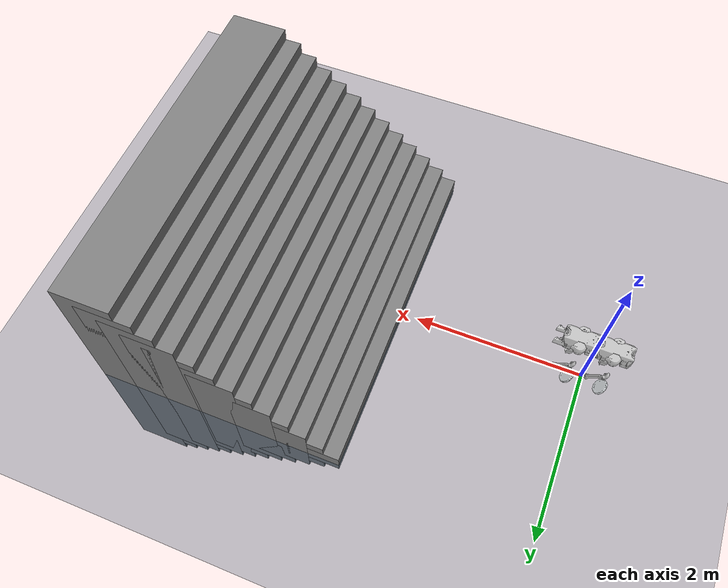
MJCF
<mujoco model="ddt scene">
  <include file="robot.xml"/>

  <statistic center="0 0 0.1" extent="0.8"/>

  <visual>
    <headlight diffuse="0.6 0.6 0.6" ambient="0.3 0.3 0.3" specular="0 0 0"/>
    <rgba haze="0.15 0.25 0.35 1"/>
    <global azimuth="-130" elevation="-20"/>
  </visual>

  <asset>
    <texture type="skybox" builtin="gradient" rgb1="0.3 0.5 0.7" rgb2="0 0 0" width="512" height="3072"/>
    <texture type="2d" name="groundplane" builtin="checker" mark="edge" rgb1="0.2 0.3 0.4" rgb2="0.1 0.2 0.3"
      markrgb="0.8 0.8 0.8" width="300" height="300"/>
    <material name="groundplane" texture="groundplane" texuniform="true" texrepeat="5 5" reflectance="0.2"/>
  </asset>

  <worldbody>
    <light pos="0 0 1.5" dir="0 0 -1" directional="true"/>
    <geom name="floor" size="0 0 0.05" type="plane" material="groundplane"/>

    <geom pos="2.4 0 0.02" type="box"  size="0.2 2 0.15" quat="1.0 0 0 0"/>
    <geom pos="2.6 0 0.02" type="box"  size="0.22 2 0.3" quat="1.0 0 0 0"/>
    <geom pos="2.8 0 0.02" type="box"  size="0.23 2 0.45" quat="1.0 0 0 0"/>
    <geom pos="3 0 0.02" type="box"  size="0.24 2 0.6" quat="1.0 0 0 0"/>
    <geom pos="3.2 0 0.02" type="box"  size="0.25 2 0.75" quat="1.0 0 0 0"/>
    <geom pos="3.4 0 0.02" type="box"  size="0.26 2 0.9" quat="1.0 0 0 0"/>
    <geom pos="3.6 0 0.02" type="box"  size="0.27 2 1.05" quat="1.0 0 0 0"/>
    <geom pos="3.8 0 0.02" type="box"  size="0.28 2 1.2" quat="1.0 0 0 0"/>
    <geom pos="4.0 0 0.02" type="box"  size="0.29 2 1.35" quat="1.0 0 0 0"/>
    <geom pos="4.2 0 0.02" type="box"  size="0.30 2 1.5" quat="1.0 0 0 0"/>
    <geom pos="4.4 0 0.02" type="box"  size="0.31 2 1.65" quat="1.0 0 0 0"/>
    <geom pos="4.6 0 0.02" type="box"  size="0.32 2 1.8" quat="1.0 0 0 0"/>
    <geom pos="4.8 0 0.02" type="box"  size="0.33 2 1.95" quat="1.0 0 0 0"/>
  </worldbody>
</mujoco>

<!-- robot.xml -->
<mujoco model="d1_260612_description">
    <compiler angle="radian" meshdir="../meshes/"/>

    <default>
        <default class="d1">
            <geom friction="0.4" margin="0.001" condim="1"/>
            <joint axis="0 1 0" damping="3.0" armature="0.0535" frictionloss="0.589"/>
            <default class="visual">
                <geom type="mesh" contype="0" conaffinity="0" group="2" density="0"/>
            </default>
            <default class="collision">
                <geom group="3" />
            </default>
        </default>
    </default>

    <asset>
        <mesh name="base_link" file="base_link.STL"/>
        <mesh name="face_link" file="face_link.STL"/>
        <mesh name="locking" file="locking.STL"/>
        <mesh name="l_hip" file="l_hip.STL"/>
        <mesh name="l_thigh" file="l_thigh.STL"/>
        <mesh name="l_calf" file="l_calf.STL"/>
        <mesh name="l_foot" file="l_foot.STL"/>
        <mesh name="r_hip" file="r_hip.STL"/>
        <mesh name="r_thigh" file="r_thigh.STL"/>
        <mesh name="r_calf" file="r_calf.STL"/>
        <mesh name="r_foot" file="r_foot.STL"/>
    </asset>

    <worldbody>
        <body name="base_link" pos="0 0 0.8" childclass="d1">
            <site name="trunk_imu" size="0.01"/>
            <joint name="floating_base_joint" type="free" limited="false" actuatorfrclimited="false"/>

            <geom name="base_link_visual" size="0.0005 0.0005 0.0005" type="box" contype="0" conaffinity="0" group="1" density="0"/>
            <body name="imu_link">
                <geom name="imu_link_visual" size="0.0005 0.0005 0.0005" type="box" contype="0" conaffinity="0" group="1" density="0"/>
            </body>
            <body name="F_base_link" pos="0.1875 0 0">
                <inertial pos="0.030736 0.00016011 -0.033144" quat="0.540652 0.457275 0.456202 0.538957" mass="9.158" diaginertia="0.12672 0.120661 0.0720841"/>
                <geom name="F_base_link_visual" type="mesh" contype="0" conaffinity="0" group="1" density="0" rgba="0.75294 0.75294 0.75294 1" mesh="base_link"/>
                <geom name="F_base_link_collision" class="collision" size="0.1375 0.075 0.09" type="box" rgba="0.75294 0.75294 0.75294 1"/>
                <geom name="F_base_link_collision_1" class="collision" size="0.175 0.075 0.05" pos="0 0 -0.1" type="box" rgba="0.75294 0.75294 0.75294 1"/>
                <body name="F_face_link" pos="0.1875 0 0">
                    <inertial pos="-0.020311 -8.1732e-06 0.0054552" quat="0.707081 0.707029 0.00859588 -0.00857665" mass="0.7859" diaginertia="0.0055957 0.0037235 0.0022024"/>
                    <geom name="F_face_link_visual" type="mesh" contype="0" conaffinity="0" group="1" density="0" rgba="0.75294 0.75294 0.75294 1" mesh="face_link"/>
                    <geom name="F_face_link_collision" class="collision" size="0.02475 0.075 0.09" pos="-0.02 0 0" type="box" rgba="0.75294 0.75294 0.75294 1"/>
                </body>
                <body name="F_locking_link" pos="-0.187 0 0">
                    <inertial pos="0.011671 0.011424 0.0056169" quat="0.704794 0.708664 0.0207194 0.0251273" mass="1.1043" diaginertia="0.00799027 0.00599541 0.00261091"/>
                    <geom name="F_locking_link_visual" type="mesh" contype="0" conaffinity="0" group="1" density="0" rgba="0.75294 0.75294 0.75294 1" mesh="locking"/>
                    <geom name="F_locking_link_collision" class="collision" size="0.02475 0.075 0.0875" pos="0.008 0 0" type="box" rgba="0.75294 0.75294 0.75294 1"/>
                </body>
                <body name="FL_hip" pos="0.0945 0.0775 0">
                    <inertial pos="-0.093061 -0.015678 -5.1798e-05" quat="0.49431 0.493126 0.50587 0.506537" mass="1.867" diaginertia="0.00456222 0.0034067 0.00260848"/>
                    <joint name="FL_hip_joint" pos="0 0 0" axis="1 0 0" range="-0.7854 0.7854" actuatorfrcrange="-80 80"  damping="3.0" armature="0.0535" frictionloss="0.589"/>
                    <geom name="FL_hip_visual" type="mesh" contype="0" conaffinity="0" group="1" density="0" rgba="0.75294 0.75294 0.75294 1" mesh="l_hip"/>
                    <body name="FL_thigh" pos="-0.0945 0.0005 0">
                        <inertial pos="-0.0037341 0.064765 -0.031361" quat="0.74824 0.0846491 -0.0111183 0.657912" mass="2.8116" diaginertia="0.0213021 0.0205064 0.0043903"/>
                        <joint name="FL_thigh_joint" pos="0 0 0" axis="0 1 0" range="-1.8326 3.4034" actuatorfrcrange="-80 80" damping="3.0" armature="0.0535" frictionloss="0.589"/>
                        <geom name="FL_thigh_visual" type="mesh" contype="0" conaffinity="0" group="1" density="0" rgba="0.75294 0.75294 0.75294 1" mesh="l_thigh"/>
                        <geom name="FL_thigh_collision" class="collision" size="0.15 0.045 0.025" pos="-0.01 0.1 -0.07" quat="0.518989 -0.561813 -0.437138 -0.473209" type="box" rgba="0.75294 0.75294 0.75294 1"/>
                        <body name="FL_calf" pos="0 0.091 -0.25" quat="0.911039 0 0.412321 0">
                            <inertial pos="0.08778 0.0049096 -0.092253" quat="0.279361 0.664859 0.600793 0.344917" mass="0.61004" diaginertia="0.00694253 0.00686369 0.000304276"/>
                            <joint name="FL_calf_joint" pos="0 0 0" axis="0 1 0" range="-2.72 -0.85" actuatorfrcrange="-80 80" damping="3.0" armature="0.0535" frictionloss="0.589"/>
                            <geom name="FL_calf_visual" type="mesh" contype="0" conaffinity="0" group="1" density="0" rgba="0.75294 0.75294 0.75294 1" mesh="l_calf"/>
                            <geom name="FL_calf_collision" class="collision" size="0.15 0.02 0.025" pos="0.09 0.01 -0.1" quat="0.968137 0.00989352 0.247206 -0.0387462" type="box" rgba="0.75294 0.75294 0.75294 1"/>
                            <body name="FL_foot" pos="0.18376 0.0305 -0.16951">
                                <inertial pos="-1.1929e-05 0.02475 1.4454e-05" quat="0.676883 -0.204639 -0.204606 0.676822" mass="1.7547" diaginertia="0.0078035 0.00415081 0.00414719"/>
                                <joint name="FL_foot_joint" pos="0 0 0" axis="0 1 0" range="-31415926 31415926" actuatorfrcrange="-12 12" damping="0.5" frictionloss="0"/>
                                <geom name="FL_foot_visual" type="mesh" contype="0" conaffinity="0" group="1" density="0" rgba="0.89804 0.91765 0.92941 1" mesh="l_foot"/>
                                <geom name="FL_foot_collision" class="collision" size="0.087 0.02" pos="0 0.025 0" quat="0.714421 0.699716 0 0" type="cylinder" rgba="0.89804 0.91765 0.92941 1"/>
                            </body>
                        </body>
                    </body>
                </body>
                <body name="FR_hip" pos="0.0945 -0.0775 0">
                    <inertial pos="-0.093061 0.015678 -5.1798e-05" quat="0.506537 0.50587 0.493126 0.49431" mass="1.867" diaginertia="0.00456222 0.0034067 0.00260848"/>
                    <joint name="FR_hip_joint" pos="0 0 0" axis="1 0 0" range="-0.7854 0.7854" actuatorfrcrange="-80 80" damping="3.0" armature="0.0535" frictionloss="0.589"/>
                    <geom name="FR_hip_visual" type="mesh" contype="0" conaffinity="0" group="1" density="0" rgba="0.75294 0.75294 0.75294 1" mesh="r_hip"/>
                    <body name="FR_thigh" pos="-0.0945 -0.0005 0">
                        <inertial pos="-0.0037341 -0.064765 -0.031361" quat="0.657912 -0.0111183 0.0846491 0.74824" mass="2.8116" diaginertia="0.0213021 0.0205064 0.0043903"/>
                        <joint name="FR_thigh_joint" pos="0 0 0" axis="0 1 0" range="-1.8326 3.4034" actuatorfrcrange="-80 80" damping="3.0" armature="0.0535" frictionloss="0.589"/>
                        <geom name="FR_thigh_visual" type="mesh" contype="0" conaffinity="0" group="1" density="0" rgba="0.75294 0.75294 0.75294 1" mesh="r_thigh"/>
                        <geom name="FR_thigh_collision" class="collision" size="0.15 0.045 0.025" pos="-0.01 -0.1 -0.07" quat="0.518989 0.561813 -0.437138 0.473209" type="box" rgba="0.75294 0.75294 0.75294 1"/>
                        <body name="FR_calf" pos="0 -0.091 -0.25" quat="0.911039 0 0.412321 0">
                            <inertial pos="0.08778 -0.0049096 -0.092253" quat="0.344917 0.600793 0.664859 0.279361" mass="0.61004" diaginertia="0.00694253 0.00686369 0.000304276"/>
                            <joint name="FR_calf_joint" pos="0 0 0" axis="0 1 0" range="-2.72 -0.85" actuatorfrcrange="-80 80" damping="3.0" armature="0.0535" frictionloss="0.589"/>
                            <geom name="FR_calf_visual" type="mesh" contype="0" conaffinity="0" group="1" density="0" rgba="0.75294 0.75294 0.75294 1" mesh="r_calf"/>
                            <geom name="FR_calf_collision" class="collision" size="0.15 0.02 0.025" pos="0.09 -0.01 -0.1" quat="0.968137 -0.00989352 0.247206 0.0387462" type="box" rgba="0.75294 0.75294 0.75294 1"/>
                            <body name="FR_foot" pos="0.18376 -0.0305 -0.16951">
                                <inertial pos="-1.1929e-05 -0.02475 1.4454e-05" quat="0.676822 -0.204606 -0.204639 0.676883" mass="1.7547" diaginertia="0.0078035 0.00415081 0.00414719"/>
                                <joint name="FR_foot_joint" pos="0 0 0" axis="0 1 0" range="-31415926 31415926" actuatorfrcrange="-12 12" damping="0.5" frictionloss="0"/>
                                <geom name="FR_foot_visual" type="mesh" contype="0" conaffinity="0" group="1" density="0" rgba="1 1 1 1" mesh="r_foot"/>
                                <geom name="FR_foot_collision" class="collision" size="0.087 0.02" pos="0 -0.025 0" quat="0.714421 0.699716 0 0" type="cylinder" rgba="1 1 1 1"/>
                            </body>
                        </body>
                    </body>
                </body>
            </body>
            <body name="R_base_link" pos="-0.1875 0 0">
                <inertial pos="0.030736 0.00016011 -0.033144" quat="0.540652 0.457275 0.456202 0.538957" mass="9.158" diaginertia="0.12672 0.120661 0.0720841"/>
                <geom name="R_base_link_visual" type="mesh" contype="0" conaffinity="0" group="1" density="0" rgba="0.75294 0.75294 0.75294 1" mesh="base_link"/>
                <geom name="R_base_link_collision" class="collision" size="0.1375 0.075 0.09" type="box" rgba="0.75294 0.75294 0.75294 1"/>
                <geom name="R_base_link_collision_1" class="collision" size="0.175 0.075 0.05" pos="0 0 -0.1" type="box" rgba="0.75294 0.75294 0.75294 1"/>
                <body name="R_face_link" pos="-0.1875 0 0" quat="1.32679e-06 0 0 1">
                    <inertial pos="-0.020311 -8.1732e-06 0.0054552" quat="0.707081 0.707029 0.00859588 -0.00857665" mass="0.7859" diaginertia="0.0055957 0.0037235 0.0022024"/>
                    <geom name="R_face_link_visual" type="mesh" contype="0" conaffinity="0" group="1" density="0" rgba="0.75294 0.75294 0.75294 1" mesh="face_link"/>
                    <geom name="R_face_link_collision" class="collision" size="0.02475 0.075 0.09" pos="-0.02 0 0" type="box" rgba="0.75294 0.75294 0.75294 1"/>
                </body>
                <body name="R_locking_link" pos="0.187 0 0" quat="1.32679e-06 0 0 1">
                    <inertial pos="0.011671 0.011424 0.0056169" quat="0.704794 0.708664 0.0207194 0.0251273" mass="1.1043" diaginertia="0.00799027 0.00599541 0.00261091"/>
                    <geom name="R_locking_link_visual" type="mesh" contype="0" conaffinity="0" group="1" density="0" rgba="0.75294 0.75294 0.75294 1" mesh="locking"/>
                    <geom name="R_locking_link_collision" class="collision" size="0.02475 0.075 0.0875" pos="0.008 0 0" type="box" rgba="0.75294 0.75294 0.75294 1"/>
                </body>
                <body name="RL_hip" pos="0.0945 0.0775 0">
                    <inertial pos="-0.093061 -0.015678 -5.1798e-05" quat="0.49431 0.493126 0.50587 0.506537" mass="1.867" diaginertia="0.00456222 0.0034067 0.00260848"/>
                    <joint name="RL_hip_joint" pos="0 0 0" axis="1 0 0" range="-0.7854 0.7854" actuatorfrcrange="-80 80" damping="3.0" armature="0.0535" frictionloss="0.589"/>
                    <geom name="RL_hip_visual" type="mesh" contype="0" conaffinity="0" group="1" density="0" rgba="0.75294 0.75294 0.75294 1" mesh="l_hip"/>
                    <body name="RL_thigh" pos="-0.0945 0.0005 0">
                        <inertial pos="-0.0037341 0.064765 -0.031361" quat="0.74824 0.0846491 -0.0111183 0.657912" mass="2.8116" diaginertia="0.0213021 0.0205064 0.0043903"/>
                        <joint name="RL_thigh_joint" pos="0 0 0" axis="0 1 0" range="-1.8326 3.4034" actuatorfrcrange="-80 80" damping="3.0" armature="0.0535" frictionloss="0.589"/>
                        <geom name="RL_thigh_visual" type="mesh" contype="0" conaffinity="0" group="1" density="0" rgba="0.75294 0.75294 0.75294 1" mesh="l_thigh"/>
                        <geom name="RL_thigh_collision" class="collision" size="0.15 0.045 0.025" pos="-0.01 0.1 -0.07" quat="0.518989 -0.561813 -0.437138 -0.473209" type="box" rgba="0.75294 0.75294 0.75294 1"/>
                        <body name="RL_calf" pos="0 0.091 -0.25" quat="0.911039 0 0.412321 0">
                            <inertial pos="0.08778 0.0049096 -0.092253" quat="0.279361 0.664859 0.600793 0.344917" mass="0.61004" diaginertia="0.00694253 0.00686369 0.000304276"/>
                            <joint name="RL_calf_joint" pos="0 0 0" axis="0 1 0" range="-2.72 -0.85" actuatorfrcrange="-80 80" damping="3.0" armature="0.0535" frictionloss="0.589"/>
                            <geom name="RL_calf_visual" type="mesh" contype="0" conaffinity="0" group="1" density="0" rgba="0.75294 0.75294 0.75294 1" mesh="l_calf"/>
                            <geom name="RL_calf_collision" class="collision" size="0.15 0.02 0.025" pos="0.09 0.01 -0.1" quat="0.968137 0.00989352 0.247206 -0.0387462" type="box" rgba="0.75294 0.75294 0.75294 1"/>
                            <body name="RL_foot" pos="0.18376 0.0305 -0.16951">
                                <inertial pos="-1.1929e-05 0.02475 1.4454e-05" quat="0.676883 -0.204639 -0.204606 0.676822" mass="1.7547" diaginertia="0.0078035 0.00415081 0.00414719"/>
                                <joint name="RL_foot_joint" pos="0 0 0" axis="0 1 0" range="-31415926 31415926" actuatorfrcrange="-12 12" damping="0.5" frictionloss="0"/>
                                <geom name="RL_foot_visual" type="mesh" contype="0" conaffinity="0" group="1" density="0" rgba="0.89804 0.91765 0.92941 1" mesh="l_foot"/>
                                <geom name="RL_foot_collision" class="collision" size="0.087 0.02" pos="0 0.025 0" quat="0.714421 0.699716 0 0" type="cylinder" rgba="0.89804 0.91765 0.92941 1"/>
                            </body>
                        </body>
                    </body>
                </body>
                <body name="RR_hip" pos="0.0945 -0.0775 0">
                    <inertial pos="-0.093061 0.015678 -5.1798e-05" quat="0.506537 0.50587 0.493126 0.49431" mass="1.867" diaginertia="0.00456222 0.0034067 0.00260848"/>
                    <joint name="RR_hip_joint" pos="0 0 0" axis="1 0 0" range="-0.7854 0.7854" actuatorfrcrange="-80 80" damping="3.0" armature="0.0535" frictionloss="0.589"/>
                    <geom name="RR_hip_visual" type="mesh" contype="0" conaffinity="0" group="1" density="0" rgba="0.75294 0.75294 0.75294 1" mesh="r_hip"/>
                    <body name="RR_thigh" pos="-0.0945 -0.0005 0">
                        <inertial pos="-0.0037341 -0.064765 -0.031361" quat="0.657912 -0.0111183 0.0846491 0.74824" mass="2.8116" diaginertia="0.0213021 0.0205064 0.0043903"/>
                        <joint name="RR_thigh_joint" pos="0 0 0" axis="0 1 0" range="-1.8326 3.4034" actuatorfrcrange="-80 80" damping="3.0" armature="0.0535" frictionloss="0.589"/>
                        <geom name="RR_thigh_visual" type="mesh" contype="0" conaffinity="0" group="1" density="0" rgba="0.75294 0.75294 0.75294 1" mesh="r_thigh"/>
                        <geom name="RR_thigh_collision" class="collision" size="0.15 0.045 0.025" pos="-0.01 -0.1 -0.07" quat="0.518989 0.561813 -0.437138 0.473209" type="box" rgba="0.75294 0.75294 0.75294 1"/>
                        <body name="RR_calf" pos="0 -0.091 -0.25" quat="0.911039 0 0.412321 0">
                            <inertial pos="0.08778 -0.0049096 -0.092253" quat="0.344917 0.600793 0.664859 0.279361" mass="0.61004" diaginertia="0.00694253 0.00686369 0.000304276"/>
                            <joint name="RR_calf_joint" pos="0 0 0" axis="0 1 0" range="-2.72 -0.85" actuatorfrcrange="-80 80" damping="3.0" armature="0.0535" frictionloss="0.589"/>
                            <geom name="RR_calf_visual" type="mesh" contype="0" conaffinity="0" group="1" density="0" rgba="0.75294 0.75294 0.75294 1" mesh="r_calf"/>
                            <geom name="RR_calf_collision" class="collision" size="0.15 0.02 0.025" pos="0.09 -0.01 -0.1" quat="0.968137 -0.00989352 0.247206 0.0387462" type="box" rgba="0.75294 0.75294 0.75294 1"/>
                            <body name="RR_foot" pos="0.18376 -0.0305 -0.16951">
                                <inertial pos="-1.1929e-05 -0.02475 1.4454e-05" quat="0.676822 -0.204606 -0.204639 0.676883" mass="1.7547" diaginertia="0.0078035 0.00415081 0.00414719"/>
                                <joint name="RR_foot_joint" pos="0 0 0" axis="0 1 0" range="-31415926 31415926" actuatorfrcrange="-12 12" damping="0.5" frictionloss="0"/>
                                <geom name="RR_foot_visual" type="mesh" contype="0" conaffinity="0" group="1" density="0" rgba="1 1 1 1" mesh="r_foot"/>
                                <geom name="RR_foot_collision" class="collision" size="0.087 0.02" pos="0 -0.025 0" quat="0.714421 0.699716 0 0" type="cylinder" rgba="1 1 1 1"/>
                            </body>
                        </body>
                    </body>
                </body>
            </body>
        </body>
    </worldbody>

    <actuator>
        <motor name="FL_hip" joint="FL_hip_joint" ctrlrange="-80 80" ctrllimited="true"/>
        <motor name="FL_thigh" joint="FL_thigh_joint" ctrlrange="-80 80" ctrllimited="true"/>
        <motor name="FL_calf" joint="FL_calf_joint" ctrlrange="-80 80" ctrllimited="true"/>
        <motor name="FL_foot" joint="FL_foot_joint" ctrlrange="-12 12" ctrllimited="true"/>

        <motor name="FR_hip" joint="FR_hip_joint" ctrlrange="-80 80" ctrllimited="true"/>
        <motor name="FR_thigh" joint="FR_thigh_joint" ctrlrange="-80 80" ctrllimited="true"/>
        <motor name="FR_calf" joint="FR_calf_joint" ctrlrange="-80 80" ctrllimited="true"/>
        <motor name="FR_foot" joint="FR_foot_joint" ctrlrange="-12 12" ctrllimited="true"/>

        <motor name="RL_hip" joint="RL_hip_joint" ctrlrange="-80 80" ctrllimited="true"/>
        <motor name="RL_thigh" joint="RL_thigh_joint" ctrlrange="-80 80" ctrllimited="true"/>
        <motor name="RL_calf" joint="RL_calf_joint" ctrlrange="-80 80" ctrllimited="true"/>
        <motor name="RL_foot" joint="RL_foot_joint" ctrlrange="-12 12" ctrllimited="true"/>

        <motor name="RR_hip" joint="RR_hip_joint" ctrlrange="-80 80" ctrllimited="true"/>
        <motor name="RR_thigh" joint="RR_thigh_joint" ctrlrange="-80 80" ctrllimited="true"/>
        <motor name="RR_calf" joint="RR_calf_joint" ctrlrange="-80 80" ctrllimited="true"/>
        <motor name="RR_foot" joint="RR_foot_joint" ctrlrange="-12 12" ctrllimited="true"/>
    </actuator>

    <sensor>
        <jointpos name="FL_hip_pos" joint="FL_hip_joint" />
        <jointpos name="FL_thigh_pos" joint="FL_thigh_joint" />
        <jointpos name="FL_calf_pos" joint="FL_calf_joint" />
        <jointpos name="FL_foot_pos" joint="FL_foot_joint" />

        <jointpos name="FR_hip_pos" joint="FR_hip_joint" />
        <jointpos name="FR_thigh_pos" joint="FR_thigh_joint" />
        <jointpos name="FR_calf_pos" joint="FR_calf_joint" />
        <jointpos name="FR_foot_pos" joint="FR_foot_joint" />

        <jointpos name="RL_hip_pos" joint="RL_hip_joint" />
        <jointpos name="RL_thigh_pos" joint="RL_thigh_joint" />
        <jointpos name="RL_calf_pos" joint="RL_calf_joint" />
        <jointpos name="RL_foot_pos" joint="RL_foot_joint" />

        <jointpos name="RR_hip_pos" joint="RR_hip_joint" />
        <jointpos name="RR_thigh_pos" joint="RR_thigh_joint" />
        <jointpos name="RR_calf_pos" joint="RR_calf_joint" />
        <jointpos name="RR_foot_pos" joint="RR_foot_joint" />

        <jointvel name="FL_hip_vel" joint="FL_hip_joint" />
        <jointvel name="FL_thigh_vel" joint="FL_thigh_joint" />
        <jointvel name="FL_calf_vel" joint="FL_calf_joint" />
        <jointvel name="FL_foot_vel" joint="FL_foot_joint" />

        <jointvel name="FR_hip_vel" joint="FR_hip_joint" />
        <jointvel name="FR_thigh_vel" joint="FR_thigh_joint" />
        <jointvel name="FR_calf_vel" joint="FR_calf_joint" />
        <jointvel name="FR_foot_vel" joint="FR_foot_joint" />

        <jointvel name="RL_hip_vel" joint="RL_hip_joint" />
        <jointvel name="RL_thigh_vel" joint="RL_thigh_joint" />
        <jointvel name="RL_calf_vel" joint="RL_calf_joint" />
        <jointvel name="RL_foot_vel" joint="RL_foot_joint" />

        <jointvel name="RR_hip_vel" joint="RR_hip_joint" />
        <jointvel name="RR_thigh_vel" joint="RR_thigh_joint" />
        <jointvel name="RR_calf_vel" joint="RR_calf_joint" />
        <jointvel name="RR_foot_vel" joint="RR_foot_joint" />

        <jointactuatorfrc name="FL_hip_torque" joint="FL_hip_joint" noise="0.01" />
        <jointactuatorfrc name="FL_thigh_torque" joint="FL_thigh_joint" noise="0.01" />
        <jointactuatorfrc name="FL_calf_torque" joint="FL_calf_joint" noise="0.01" />
        <jointactuatorfrc name="FL_foot_torque" joint="FL_foot_joint" noise="0.01" />

        <jointactuatorfrc name="FR_hip_torque" joint="FR_hip_joint" noise="0.01" />
        <jointactuatorfrc name="FR_thigh_torque" joint="FR_thigh_joint" noise="0.01" />
        <jointactuatorfrc name="FR_calf_torque" joint="FR_calf_joint" noise="0.01" />
        <jointactuatorfrc name="FR_foot_torque" joint="FR_foot_joint" noise="0.01" />

        <jointactuatorfrc name="RL_hip_torque" joint="RL_hip_joint" noise="0.01" />
        <jointactuatorfrc name="RL_thigh_torque" joint="RL_thigh_joint" noise="0.01" />
        <jointactuatorfrc name="RL_calf_torque" joint="RL_calf_joint" noise="0.01" />
        <jointactuatorfrc name="RL_foot_torque" joint="RL_foot_joint" noise="0.01" />

        <jointactuatorfrc name="RR_hip_torque" joint="RR_hip_joint" noise="0.01" />
        <jointactuatorfrc name="RR_thigh_torque" joint="RR_thigh_joint" noise="0.01" />
        <jointactuatorfrc name="RR_calf_torque" joint="RR_calf_joint" noise="0.01" />
        <jointactuatorfrc name="RR_foot_torque" joint="RR_foot_joint" noise="0.01" />

        <framequat name="trunk_quat" objtype="site" objname="trunk_imu" />
        <gyro name="trunk_gyro" site="trunk_imu" />
        <accelerometer name="trunk_accel" site="trunk_imu" />

        <framepos name="frame_pos" objtype="site" objname="trunk_imu" />
        <framelinvel name="frame_vel" objtype="site" objname="trunk_imu" />
    </sensor>
</mujoco>
